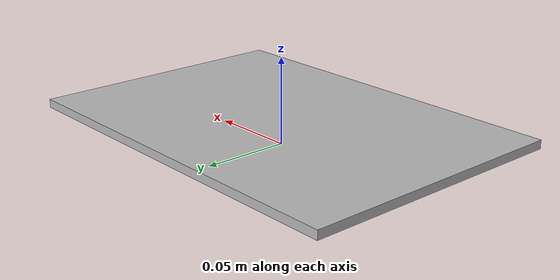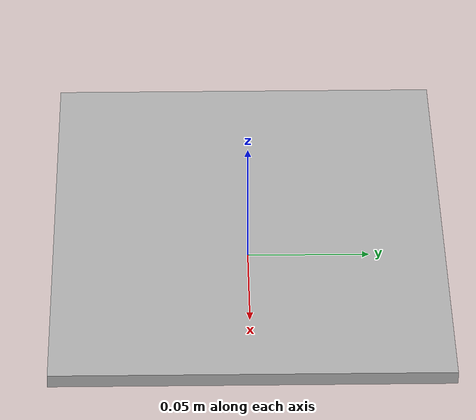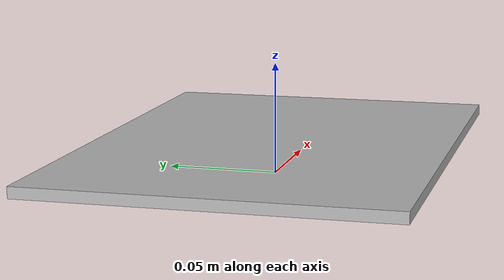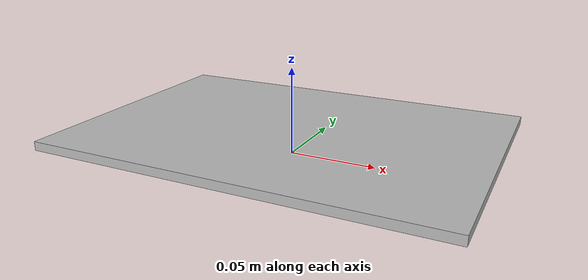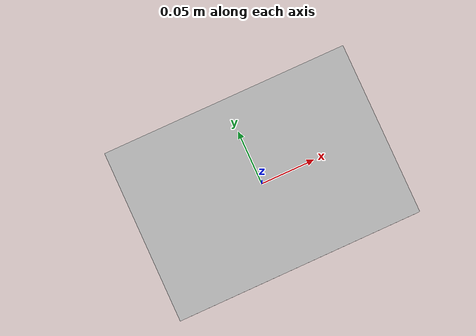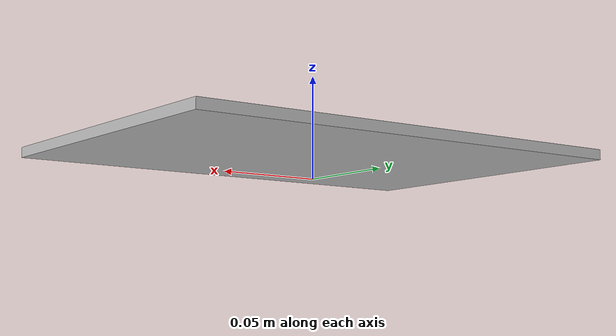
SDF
<?xml version="1.0" ?>
        <sdf version="1.5">
        <model name="Pattern_Cropped_Gz">
              <link name="Main">
                <pose>0 0 0 0 0 0</pose>
                    <visual name="Pattern_Cropped_Gz_Visual">
                        <pose>0 0 0.0125 0 0 0</pose>
                        <geometry>
                            <mesh>
                                <scale>1 1 1</scale>
                                <uri>Pattern_Cropped_Gz.obj</uri>
                            </mesh>
                        </geometry>
                    </visual>
                    <gravity>1</gravity>
                    <velocity_decay/>
                    <self_collide>0</self_collide>
              </link>

              <plugin
                filename="Position_Control"
                name="gz::sim::v7::systems::PositionController">
                <timestep_precision>10</timestep_precision>
                <xyz_offset> 0 0 0</xyz_offset>
                <rpy_offset> 0 0 0</rpy_offset>
            </plugin>

          </model></sdf>
